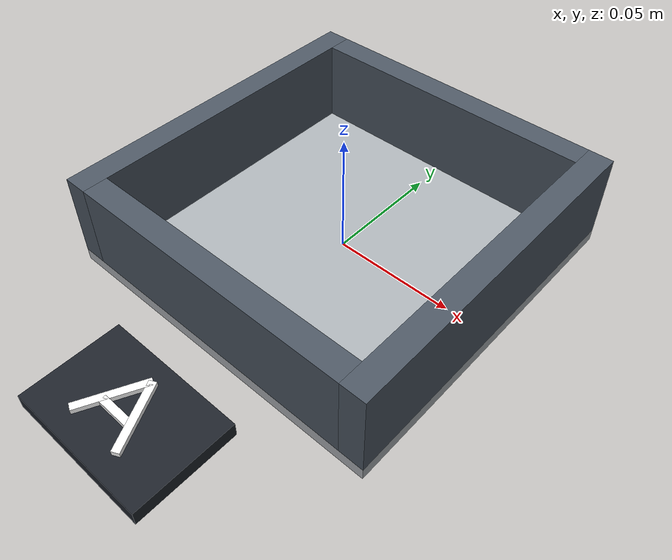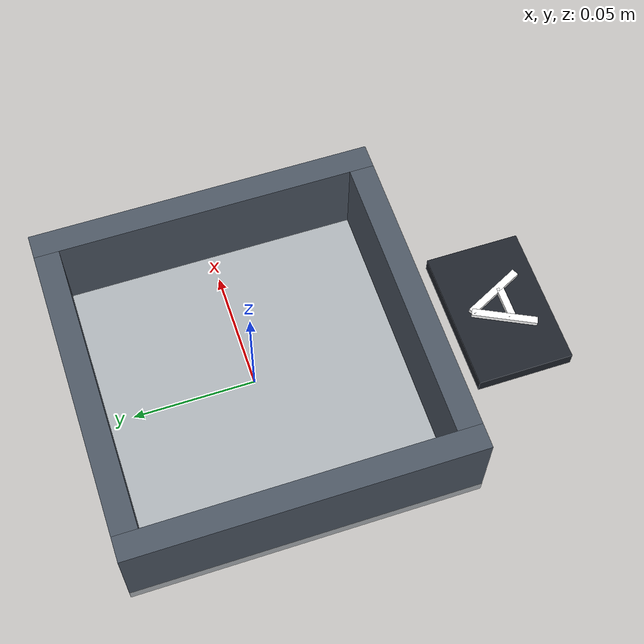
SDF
<sdf version="1.6"><model name="zone_a"><static>true</static><link name="link"><visual name="floor"><pose>0.000000 0.000000 0.000000 0 0 0.000000</pose><geometry><box><size>0.140000 0.140000 0.005000</size></box></geometry><material><ambient>0.51 0.5249999999999999 0.54 1</ambient><diffuse>0.68 0.7 0.72 1</diffuse><emissive>0.054400000000000004 0.055999999999999994 0.0576 1</emissive><specular>0.12 0.12 0.12 1</specular></material></visual><visual name="left_wall"><pose>-0.065000 0.000000 0.020000 0 0 0.000000</pose><geometry><box><size>0.010000 0.140000 0.035000</size></box></geometry><material><ambient>0.22499999999999998 0.255 0.2925 1</ambient><diffuse>0.3 0.34 0.39 1</diffuse><emissive>0.024 0.027200000000000002 0.031200000000000002 1</emissive><specular>0.12 0.12 0.12 1</specular></material></visual><visual name="right_wall"><pose>0.065000 0.000000 0.020000 0 0 0.000000</pose><geometry><box><size>0.010000 0.140000 0.035000</size></box></geometry><material><ambient>0.22499999999999998 0.255 0.2925 1</ambient><diffuse>0.3 0.34 0.39 1</diffuse><emissive>0.024 0.027200000000000002 0.031200000000000002 1</emissive><specular>0.12 0.12 0.12 1</specular></material></visual><visual name="front_wall"><pose>0.000000 -0.065000 0.020000 0 0 0.000000</pose><geometry><box><size>0.120000 0.010000 0.035000</size></box></geometry><material><ambient>0.22499999999999998 0.255 0.2925 1</ambient><diffuse>0.3 0.34 0.39 1</diffuse><emissive>0.024 0.027200000000000002 0.031200000000000002 1</emissive><specular>0.12 0.12 0.12 1</specular></material></visual><visual name="back_wall"><pose>0.000000 0.065000 0.020000 0 0 0.000000</pose><geometry><box><size>0.120000 0.010000 0.035000</size></box></geometry><material><ambient>0.22499999999999998 0.255 0.2925 1</ambient><diffuse>0.3 0.34 0.39 1</diffuse><emissive>0.024 0.027200000000000002 0.031200000000000002 1</emissive><specular>0.12 0.12 0.12 1</specular></material></visual><visual name="label_plate"><pose>0.000000 -0.105000 0.000000 0 0 0.000000</pose><geometry><box><size>0.060000 0.040000 0.006000</size></box></geometry><material><ambient>0.09 0.10500000000000001 0.1275 1</ambient><diffuse>0.12 0.14 0.17 1</diffuse><emissive>0.0096 0.011200000000000002 0.013600000000000001 1</emissive><specular>0.12 0.12 0.12 1</specular></material></visual><visual name="label_a_0"><pose>-0.006000 -0.105000 0.005000 0 0 1.107149</pose><geometry><box><size>0.026833 0.003000 0.002000</size></box></geometry><material><ambient>0.75 0.75 0.75 1</ambient><diffuse>1.0 1.0 1.0 1</diffuse><emissive>0.08 0.08 0.08 1</emissive><specular>0.12 0.12 0.12 1</specular></material></visual><visual name="label_a_1"><pose>0.006000 -0.105000 0.005000 0 0 -1.107149</pose><geometry><box><size>0.026833 0.003000 0.002000</size></box></geometry><material><ambient>0.75 0.75 0.75 1</ambient><diffuse>1.0 1.0 1.0 1</diffuse><emissive>0.08 0.08 0.08 1</emissive><specular>0.12 0.12 0.12 1</specular></material></visual><visual name="label_a_2"><pose>0.000000 -0.108000 0.005000 0 0 0.000000</pose><geometry><box><size>0.014000 0.003000 0.002000</size></box></geometry><material><ambient>0.75 0.75 0.75 1</ambient><diffuse>1.0 1.0 1.0 1</diffuse><emissive>0.08 0.08 0.08 1</emissive><specular>0.12 0.12 0.12 1</specular></material></visual><collision name="floor_collision"><pose>0.000000 0.000000 0.000000 0 0 0.000000</pose><geometry><box><size>0.140000 0.140000 0.005000</size></box></geometry></collision><collision name="left_wall_collision"><pose>-0.065000 0.000000 0.020000 0 0 0.000000</pose><geometry><box><size>0.010000 0.140000 0.035000</size></box></geometry></collision><collision name="right_wall_collision"><pose>0.065000 0.000000 0.020000 0 0 0.000000</pose><geometry><box><size>0.010000 0.140000 0.035000</size></box></geometry></collision><collision name="front_wall_collision"><pose>0.000000 -0.065000 0.020000 0 0 0.000000</pose><geometry><box><size>0.120000 0.010000 0.035000</size></box></geometry></collision><collision name="back_wall_collision"><pose>0.000000 0.065000 0.020000 0 0 0.000000</pose><geometry><box><size>0.120000 0.010000 0.035000</size></box></geometry></collision></link></model></sdf>
